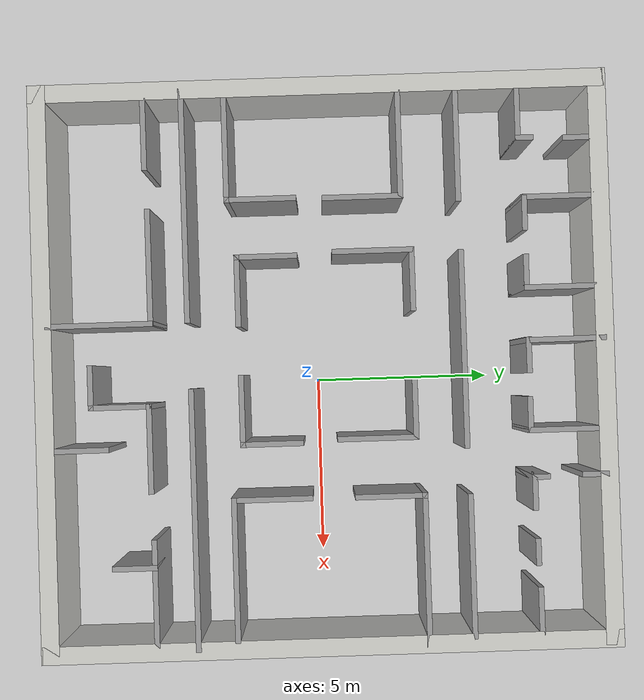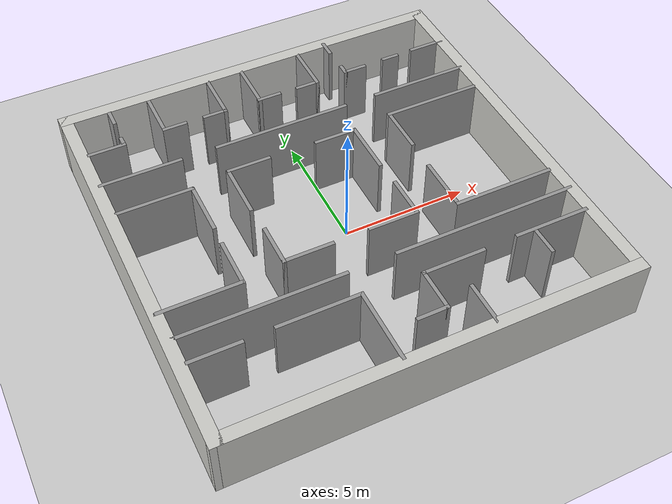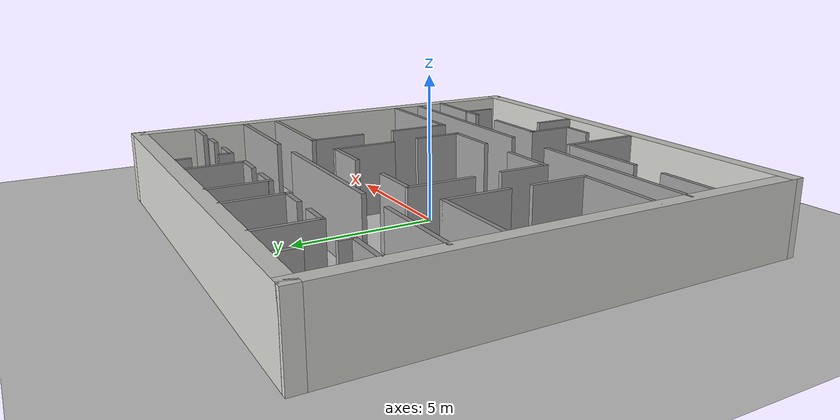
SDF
<sdf version="1.6">
 <world name="default">
  <light name="sun" type="directional">
   <pose>0 0 10 0 -0 0</pose>
   <diffuse>0.8 0.8 0.8 1</diffuse>
   <specular>0.1 0.1 0.1 1</specular>
   <attenuation>
    <range>1000</range>
    <constant>0.9</constant>
    <linear>0.01</linear>
    <quadratic>0.001</quadratic>
   </attenuation>
   <direction>-0.5 0.5 -1</direction>
  </light>
  <model name="ground_plane">
   <static>1</static>
   <link name="link">
    <collision name="collision">
     <geometry><plane><normal>0 0 1</normal><size>100 100</size></plane></geometry>
     <surface><friction><ode><mu>100</mu><mu2>50</mu2></ode></friction></surface>
    </collision>
    <visual name="visual">
     <cast_shadows>0</cast_shadows>
     <geometry><plane><normal>0 0 1</normal><size>100 100</size></plane></geometry>
     <material>
      <script><uri>file://media/materials/scripts/gazebo.material</uri><name>Gazebo/Grey</name></script>
     </material>
    </visual>
   </link>
  </model>
  <gravity>0 0 -9.8</gravity>
  <magnetic_field>6e-06 2.3e-05 -4.2e-05</magnetic_field>
  <atmosphere type="adiabatic"/>
  <physics name="default_physics" default="0" type="ode">
   <max_step_size>0.001</max_step_size>
   <real_time_factor>1</real_time_factor>
   <real_time_update_rate>1000</real_time_update_rate>
  </physics>
  <scene><ambient>0.4 0.4 0.4 1</ambient><background>0.7 0.7 0.7 1</background><shadows>1</shadows></scene>
  <spherical_coordinates>
   <surface_model>EARTH_WGS84</surface_model>
   <latitude_deg>0</latitude_deg>
   <longitude_deg>0</longitude_deg>
   <elevation>0</elevation>
   <heading_deg>0</heading_deg>
  </spherical_coordinates>
  <model name="Markert">
   <pose>-0.41 0.18511 0 0 -0 0</pose>
   <link name="Wall_0">
    <collision name="Wall_0_Collision">
     <geometry><box><size>15.9296 0.5 2.5</size></box></geometry>
     <pose>0 0 1.25 0 -0 0</pose>
    </collision>
    <visual name="Wall_0_Visual">
     <pose>0 0 1.25 0 -0 0</pose>
     <geometry><box><size>15.9296 0.5 2.5</size></box></geometry>
     <material>
      <script><uri>file://media/materials/scripts/gazebo.material</uri><name>Gazebo/CeilingTiled</name></script>
      <ambient>0.760784 0.662745 0.627451 1</ambient>
     </material>
    </visual>
    <pose>-0.035179 7.76589 0 0 -0 0</pose>
   </link>
   <link name="Wall_100">
    <collision name="Wall_100_Collision">
     <geometry><box><size>2.27326 0.15 2.5</size></box></geometry>
     <pose>0 0 1.25 0 -0 0</pose>
    </collision>
    <visual name="Wall_100_Visual">
     <pose>0 0 1.25 0 -0 0</pose>
     <geometry><box><size>2.27326 0.15 2.5</size></box></geometry>
     <material>
      <script><uri>file://media/materials/scripts/gazebo.material</uri><name>Gazebo/Grey</name></script>
      <ambient>1 1 1 1</ambient>
     </material>
    </visual>
    <pose>-3.13389 1.44793 0 0 0 -1.5708</pose>
   </link>
   <link name="Wall_102">
    <collision name="Wall_102_Collision">
     <geometry><box><size>1.75 0.15 2.5</size></box></geometry>
     <pose>0 0 1.25 0 -0 0</pose>
    </collision>
    <visual name="Wall_102_Visual">
     <pose>0 0 1.25 0 -0 0</pose>
     <geometry><box><size>1.75 0.15 2.5</size></box></geometry>
     <material>
      <script><uri>file://media/materials/scripts/gazebo.material</uri><name>Gazebo/Grey</name></script>
      <ambient>1 1 1 1</ambient>
     </material>
    </visual>
    <pose>-3.0645 -1.52879 0 0 0 -1.5708</pose>
   </link>
   <link name="Wall_103">
    <collision name="Wall_103_Collision">
     <geometry><box><size>2 0.15 2.5</size></box></geometry>
     <pose>0 0 1.25 0 -0 0</pose>
    </collision>
    <visual name="Wall_103_Visual">
     <pose>0 0 1.25 0 -0 0</pose>
     <geometry><box><size>2 0.15 2.5</size></box></geometry>
     <material>
      <script><uri>file://media/materials/scripts/gazebo.material</uri><name>Gazebo/Grey</name></script>
      <ambient>1 1 1 1</ambient>
     </material>
    </visual>
    <pose>-2.1395 -2.32879 0 0 -0 0</pose>
   </link>
   <link name="Wall_105">
    <collision name="Wall_105_Collision">
     <geometry><box><size>2 0.15 2.5</size></box></geometry>
     <pose>0 0 1.25 0 -0 0</pose>
    </collision>
    <visual name="Wall_105_Visual">
     <pose>0 0 1.25 0 -0 0</pose>
     <geometry><box><size>2 0.15 2.5</size></box></geometry>
     <material>
      <script><uri>file://media/materials/scripts/gazebo.material</uri><name>Gazebo/Grey</name></script>
      <ambient>1 1 1 1</ambient>
     </material>
    </visual>
    <pose>1.19131 -2.30167 0 0 -0 0</pose>
   </link>
   <link name="Wall_106">
    <collision name="Wall_106_Collision">
     <geometry><box><size>1.75 0.15 2.5</size></box></geometry>
     <pose>0 0 1.25 0 -0 0</pose>
    </collision>
    <visual name="Wall_106_Visual">
     <pose>0 0 1.25 0 -0 0</pose>
     <geometry><box><size>1.75 0.15 2.5</size></box></geometry>
     <material>
      <script><uri>file://media/materials/scripts/gazebo.material</uri><name>Gazebo/Grey</name></script>
      <ambient>1 1 1 1</ambient>
     </material>
    </visual>
    <pose>2.11631 -1.50167 0 0 -0 1.5708</pose>
   </link>
   <link name="Wall_108">
    <collision name="Wall_108_Collision">
     <geometry><box><size>2.25 0.15 2.5</size></box></geometry>
     <pose>0 0 1.25 0 -0 0</pose>
    </collision>
    <visual name="Wall_108_Visual">
     <pose>0 0 1.25 0 -0 0</pose>
     <geometry><box><size>2.25 0.15 2.5</size></box></geometry>
     <material>
      <script><uri>file://media/materials/scripts/gazebo.material</uri><name>Gazebo/Grey</name></script>
      <ambient>1 1 1 1</ambient>
     </material>
    </visual>
    <pose>2.04737 1.43148 0 0 -0 1.5708</pose>
   </link>
   <link name="Wall_11">
    <collision name="Wall_11_Collision">
     <geometry><box><size>1.5 0.15 2.5</size></box></geometry>
     <pose>0 0 1.25 0 -0 0</pose>
    </collision>
    <visual name="Wall_11_Visual">
     <pose>0 0 1.25 0 -0 0</pose>
     <geometry><box><size>1.5 0.15 2.5</size></box></geometry>
     <material>
      <script><uri>file://media/materials/scripts/gazebo.material</uri><name>Gazebo/Grey</name></script>
      <ambient>1 1 1 1</ambient>
     </material>
    </visual>
    <pose>-6.8057 5.55204 0 0 -0 0</pose>
   </link>
   <link name="Wall_111">
    <collision name="Wall_111_Collision">
     <geometry><box><size>1.75 0.15 2.5</size></box></geometry>
     <pose>0 0 1.25 0 -0 0</pose>
    </collision>
    <visual name="Wall_111_Visual">
     <pose>0 0 1.25 0 -0 0</pose>
     <geometry><box><size>1.75 0.15 2.5</size></box></geometry>
     <material>
      <script><uri>file://media/materials/scripts/gazebo.material</uri><name>Gazebo/Grey</name></script>
      <ambient>1 1 1 1</ambient>
     </material>
    </visual>
    <pose>-2.31076 2.50949 0 0 -0 0</pose>
   </link>
   <link name="Wall_113">
    <collision name="Wall_113_Collision">
     <geometry><box><size>1.75 0.15 2.5</size></box></geometry>
     <pose>0 0 1.25 0 -0 0</pose>
    </collision>
    <visual name="Wall_113_Visual">
     <pose>0 0 1.25 0 -0 0</pose>
     <geometry><box><size>1.75 0.15 2.5</size></box></geometry>
     <material>
      <script><uri>file://media/materials/scripts/gazebo.material</uri><name>Gazebo/Grey</name></script>
      <ambient>1 1 1 1</ambient>
     </material>
    </visual>
    <pose>1.24737 2.48148 0 0 -0 3.14159</pose>
   </link>
   <link name="Wall_115">
    <collision name="Wall_115_Collision">
     <geometry><box><size>2 0.15 2.5</size></box></geometry>
     <pose>0 0 1.25 0 -0 0</pose>
    </collision>
    <visual name="Wall_115_Visual">
     <pose>0 0 1.25 0 -0 0</pose>
     <geometry><box><size>2 0.15 2.5</size></box></geometry>
     <material>
      <script><uri>file://media/materials/scripts/gazebo.material</uri><name>Gazebo/Grey</name></script>
      <ambient>1 1 1 1</ambient>
     </material>
    </visual>
    <pose>-6.55744 -4.79978 0 0 -0 0</pose>
   </link>
   <link name="Wall_117">
    <collision name="Wall_117_Collision">
     <geometry><box><size>3.25 0.15 2.5</size></box></geometry>
     <pose>0 0 1.25 0 -0 0</pose>
    </collision>
    <visual name="Wall_117_Visual">
     <pose>0 0 1.25 0 -0 0</pose>
     <geometry><box><size>3.25 0.15 2.5</size></box></geometry>
     <material>
      <script><uri>file://media/materials/scripts/gazebo.material</uri><name>Gazebo/Grey</name></script>
      <ambient>1 1 1 1</ambient>
     </material>
    </visual>
    <pose>-2.85607 -4.75352 0 0 -0 0</pose>
   </link>
   <link name="Wall_118">
    <collision name="Wall_118_Collision">
     <geometry><box><size>3 0.15 2.5</size></box></geometry>
     <pose>0 0 1.25 0 -0 0</pose>
    </collision>
    <visual name="Wall_118_Visual">
     <pose>0 0 1.25 0 -0 0</pose>
     <geometry><box><size>3 0.15 2.5</size></box></geometry>
     <material>
      <script><uri>file://media/materials/scripts/gazebo.material</uri><name>Gazebo/Grey</name></script>
      <ambient>1 1 1 1</ambient>
     </material>
    </visual>
    <pose>-1.30607 -6.17852 0 0 0 -1.5708</pose>
   </link>
   <link name="Wall_12">
    <collision name="Wall_12_Collision">
     <geometry><box><size>0.5 0.15 2.5</size></box></geometry>
     <pose>0 0 1.25 0 -0 0</pose>
    </collision>
    <visual name="Wall_12_Visual">
     <pose>0 0 1.25 0 -0 0</pose>
     <geometry><box><size>0.5 0.15 2.5</size></box></geometry>
     <material>
      <script><uri>file://media/materials/scripts/gazebo.material</uri><name>Gazebo/Grey</name></script>
      <ambient>1 1 1 1</ambient>
     </material>
    </visual>
    <pose>-6.1307 5.72704 0 0 -0 1.5708</pose>
   </link>
   <link name="Wall_120">
    <collision name="Wall_120_Collision">
     <geometry><box><size>1.25 0.15 2.5</size></box></geometry>
     <pose>0 0 1.25 0 -0 0</pose>
    </collision>
    <visual name="Wall_120_Visual">
     <pose>0 0 1.25 0 -0 0</pose>
     <geometry><box><size>1.25 0.15 2.5</size></box></geometry>
     <material>
      <script><uri>file://media/materials/scripts/gazebo.material</uri><name>Gazebo/Grey</name></script>
      <ambient>1 1 1 1</ambient>
     </material>
    </visual>
    <pose>0.423091 -6.46518 0 0 -0 0</pose>
   </link>
   <link name="Wall_121">
    <collision name="Wall_121_Collision">
     <geometry><box><size>1.75 0.15 2.5</size></box></geometry>
     <pose>0 0 1.25 0 -0 0</pose>
    </collision>
    <visual name="Wall_121_Visual">
     <pose>0 0 1.25 0 -0 0</pose>
     <geometry><box><size>1.75 0.15 2.5</size></box></geometry>
     <material>
      <script><uri>file://media/materials/scripts/gazebo.material</uri><name>Gazebo/Grey</name></script>
      <ambient>1 1 1 1</ambient>
     </material>
    </visual>
    <pose>0.973091 -5.66518 0 0 -0 1.5708</pose>
   </link>
   <link name="Wall_122">
    <collision name="Wall_122_Collision">
     <geometry><box><size>2.5 0.15 2.5</size></box></geometry>
     <pose>0 0 1.25 0 -0 0</pose>
    </collision>
    <visual name="Wall_122_Visual">
     <pose>0 0 1.25 0 -0 0</pose>
     <geometry><box><size>2.5 0.15 2.5</size></box></geometry>
     <material>
      <script><uri>file://media/materials/scripts/gazebo.material</uri><name>Gazebo/Grey</name></script>
      <ambient>1 1 1 1</ambient>
     </material>
    </visual>
    <pose>2.14809 -4.86518 0 0 -0 0</pose>
   </link>
   <link name="Wall_124">
    <collision name="Wall_124_Collision">
     <geometry><box><size>3 0.15 2.5</size></box></geometry>
     <pose>0 0 1.25 0 -0 0</pose>
    </collision>
    <visual name="Wall_124_Visual">
     <pose>0 0 1.25 0 -0 0</pose>
     <geometry><box><size>3 0.15 2.5</size></box></geometry>
     <material>
      <script><uri>file://media/materials/scripts/gazebo.material</uri><name>Gazebo/Grey</name></script>
      <ambient>1 1 1 1</ambient>
     </material>
    </visual>
    <pose>6.15552 -4.82291 0 0 -0 0</pose>
   </link>
   <link name="Wall_126">
    <collision name="Wall_126_Collision">
     <geometry><box><size>1.25 0.15 2.5</size></box></geometry>
     <pose>0 0 1.25 0 -0 0</pose>
    </collision>
    <visual name="Wall_126_Visual">
     <pose>0 0 1.25 0 -0 0</pose>
     <geometry><box><size>1.25 0.15 2.5</size></box></geometry>
     <material>
      <script><uri>file://media/materials/scripts/gazebo.material</uri><name>Gazebo/Grey</name></script>
      <ambient>1 1 1 1</ambient>
     </material>
    </visual>
    <pose>5.42444 -5.37291 0 0 0 -1.5708</pose>
   </link>
   <link name="Wall_128">
    <collision name="Wall_128_Collision">
     <geometry><box><size>1.75 0.15 2.5</size></box></geometry>
     <pose>0 0 1.25 0 -0 0</pose>
    </collision>
    <visual name="Wall_128_Visual">
     <pose>0 0 1.25 0 -0 0</pose>
     <geometry><box><size>1.75 0.15 2.5</size></box></geometry>
     <material>
      <script><uri>file://media/materials/scripts/gazebo.material</uri><name>Gazebo/Grey</name></script>
      <ambient>1 1 1 1</ambient>
     </material>
    </visual>
    <pose>2.13989 -6.87196 0 0 0 -1.5708</pose>
   </link>
   <link name="Wall_14">
    <collision name="Wall_14_Collision">
     <geometry><box><size>0.75 0.15 2.5</size></box></geometry>
     <pose>0 0 1.25 0 -0 0</pose>
    </collision>
    <visual name="Wall_14_Visual">
     <pose>0 0 1.25 0 -0 0</pose>
     <geometry><box><size>0.75 0.15 2.5</size></box></geometry>
     <material>
      <script><uri>file://media/materials/scripts/gazebo.material</uri><name>Gazebo/Grey</name></script>
      <ambient>1 1 1 1</ambient>
     </material>
    </visual>
    <pose>-6.09287 7.16161 0 0 -0 1.5708</pose>
   </link>
   <link name="Wall_16">
    <collision name="Wall_16_Collision">
     <geometry><box><size>2 0.15 2.5</size></box></geometry>
     <pose>0 0 1.25 0 -0 0</pose>
    </collision>
    <visual name="Wall_16_Visual">
     <pose>0 0 1.25 0 -0 0</pose>
     <geometry><box><size>2 0.15 2.5</size></box></geometry>
     <material>
      <script><uri>file://media/materials/scripts/gazebo.material</uri><name>Gazebo/Grey</name></script>
      <ambient>1 1 1 1</ambient>
     </material>
    </visual>
    <pose>-4.48618 6.59332 0 0 0 -1.5708</pose>
   </link>
   <link name="Wall_17">
    <collision name="Wall_17_Collision">
     <geometry><box><size>1 0.15 2.5</size></box></geometry>
     <pose>0 0 1.25 0 -0 0</pose>
    </collision>
    <visual name="Wall_17_Visual">
     <pose>0 0 1.25 0 -0 0</pose>
     <geometry><box><size>1 0.15 2.5</size></box></geometry>
     <material>
      <script><uri>file://media/materials/scripts/gazebo.material</uri><name>Gazebo/Grey</name></script>
      <ambient>1 1 1 1</ambient>
     </material>
    </visual>
    <pose>-4.06118 5.66832 0 0 -0 0</pose>
   </link>
   <link name="Wall_19">
    <collision name="Wall_19_Collision">
     <geometry><box><size>1 0.15 2.5</size></box></geometry>
     <pose>0 0 1.25 0 -0 0</pose>
    </collision>
    <visual name="Wall_19_Visual">
     <pose>0 0 1.25 0 -0 0</pose>
     <geometry><box><size>1 0.15 2.5</size></box></geometry>
     <material>
      <script><uri>file://media/materials/scripts/gazebo.material</uri><name>Gazebo/Grey</name></script>
      <ambient>1 1 1 1</ambient>
     </material>
    </visual>
    <pose>-2.40342 5.66285 0 0 -0 0</pose>
   </link>
   <link name="Wall_20">
    <collision name="Wall_20_Collision">
     <geometry><box><size>2 0.15 2.5</size></box></geometry>
     <pose>0 0 1.25 0 -0 0</pose>
    </collision>
    <visual name="Wall_20_Visual">
     <pose>0 0 1.25 0 -0 0</pose>
     <geometry><box><size>2 0.15 2.5</size></box></geometry>
     <material>
      <script><uri>file://media/materials/scripts/gazebo.material</uri><name>Gazebo/Grey</name></script>
      <ambient>1 1 1 1</ambient>
     </material>
    </visual>
    <pose>-1.97842 6.58785 0 0 -0 1.5708</pose>
   </link>
   <link name="Wall_22">
    <collision name="Wall_22_Collision">
     <geometry><box><size>2.22024 0.15 2.5</size></box></geometry>
     <pose>0 0 1.25 0 -0 0</pose>
    </collision>
    <visual name="Wall_22_Visual">
     <pose>0 0 1.25 0 -0 0</pose>
     <geometry><box><size>2.22024 0.15 2.5</size></box></geometry>
     <material>
      <script><uri>file://media/materials/scripts/gazebo.material</uri><name>Gazebo/Grey</name></script>
      <ambient>1 1 1 1</ambient>
     </material>
    </visual>
    <pose>-0.527628 6.69645 0 0 0 -1.56667</pose>
   </link>
   <link name="Wall_23">
    <collision name="Wall_23_Collision">
     <geometry><box><size>1 0.15 2.5</size></box></geometry>
     <pose>0 0 1.25 0 -0 0</pose>
    </collision>
    <visual name="Wall_23_Visual">
     <pose>0 0 1.25 0 -0 0</pose>
     <geometry><box><size>1 0.15 2.5</size></box></geometry>
     <material>
      <script><uri>file://media/materials/scripts/gazebo.material</uri><name>Gazebo/Grey</name></script>
      <ambient>1 1 1 1</ambient>
     </material>
    </visual>
    <pose>-0.113562 5.66166 0 0 -0 0</pose>
   </link>
   <link name="Wall_25">
    <collision name="Wall_25_Collision">
     <geometry><box><size>1 0.15 2.5</size></box></geometry>
     <pose>0 0 1.25 0 -0 0</pose>
    </collision>
    <visual name="Wall_25_Visual">
     <pose>0 0 1.25 0 -0 0</pose>
     <geometry><box><size>1 0.15 2.5</size></box></geometry>
     <material>
      <script><uri>file://media/materials/scripts/gazebo.material</uri><name>Gazebo/Grey</name></script>
      <ambient>1 1 1 1</ambient>
     </material>
    </visual>
    <pose>1.53564 5.64764 0 0 -0 0</pose>
   </link>
   <link name="Wall_27">
    <collision name="Wall_27_Collision">
     <geometry><box><size>2 0.15 2.5</size></box></geometry>
     <pose>0 0 1.25 0 -0 0</pose>
    </collision>
    <visual name="Wall_27_Visual">
     <pose>0 0 1.25 0 -0 0</pose>
     <geometry><box><size>2 0.15 2.5</size></box></geometry>
     <material>
      <script><uri>file://media/materials/scripts/gazebo.material</uri><name>Gazebo/Grey</name></script>
      <ambient>1 1 1 1</ambient>
     </material>
    </visual>
    <pose>1.96064 6.57264 0 0 -0 1.5708</pose>
   </link>
   <link name="Wall_29">
    <collision name="Wall_29_Collision">
     <geometry><box><size>0.75 0.15 2.5</size></box></geometry>
     <pose>0 0 1.25 0 -0 0</pose>
    </collision>
    <visual name="Wall_29_Visual">
     <pose>0 0 1.25 0 -0 0</pose>
     <geometry><box><size>0.75 0.15 2.5</size></box></geometry>
     <material>
      <script><uri>file://media/materials/scripts/gazebo.material</uri><name>Gazebo/Grey</name></script>
      <ambient>1 1 1 1</ambient>
     </material>
    </visual>
    <pose>3.22466 7.38561 0 0 0 -1.5708</pose>
   </link>
   <link name="Wall_31">
    <collision name="Wall_31_Collision">
     <geometry><box><size>0.5 0.15 2.5</size></box></geometry>
     <pose>0 0 1.25 0 -0 0</pose>
    </collision>
    <visual name="Wall_31_Visual">
     <pose>0 0 1.25 0 -0 0</pose>
     <geometry><box><size>0.5 0.15 2.5</size></box></geometry>
     <material>
      <script><uri>file://media/materials/scripts/gazebo.material</uri><name>Gazebo/Grey</name></script>
      <ambient>1 1 1 1</ambient>
     </material>
    </visual>
    <pose>3.25508 5.88328 0 0 0 -1.5708</pose>
   </link>
   <link name="Wall_32">
    <collision name="Wall_32_Collision">
     <geometry><box><size>1 0.15 2.5</size></box></geometry>
     <pose>0 0 1.25 0 -0 0</pose>
    </collision>
    <visual name="Wall_32_Visual">
     <pose>0 0 1.25 0 -0 0</pose>
     <geometry><box><size>1 0.15 2.5</size></box></geometry>
     <material>
      <script><uri>file://media/materials/scripts/gazebo.material</uri><name>Gazebo/Grey</name></script>
      <ambient>1 1 1 1</ambient>
     </material>
    </visual>
    <pose>3.68008 5.70828 0 0 -0 0</pose>
   </link>
   <link name="Wall_34">
    <collision name="Wall_34_Collision">
     <geometry><box><size>0.75 0.15 2.5</size></box></geometry>
     <pose>0 0 1.25 0 -0 0</pose>
    </collision>
    <visual name="Wall_34_Visual">
     <pose>0 0 1.25 0 -0 0</pose>
     <geometry><box><size>0.75 0.15 2.5</size></box></geometry>
     <material>
      <script><uri>file://media/materials/scripts/gazebo.material</uri><name>Gazebo/Grey</name></script>
      <ambient>1 1 1 1</ambient>
     </material>
    </visual>
    <pose>5.31929 5.73889 0 0 -0 0</pose>
   </link>
   <link name="Wall_36">
    <collision name="Wall_36_Collision">
     <geometry><box><size>1.5 0.15 2.5</size></box></geometry>
     <pose>0 0 1.25 0 -0 0</pose>
    </collision>
    <visual name="Wall_36_Visual">
     <pose>0 0 1.25 0 -0 0</pose>
     <geometry><box><size>1.5 0.15 2.5</size></box></geometry>
     <material>
      <script><uri>file://media/materials/scripts/gazebo.material</uri><name>Gazebo/Grey</name></script>
      <ambient>1 1 1 1</ambient>
     </material>
    </visual>
    <pose>7.03266 5.76931 0 0 -0 0</pose>
   </link>
   <link name="Wall_4">
    <collision name="Wall_4_Collision">
     <geometry><box><size>16 0.5 2.5</size></box></geometry>
     <pose>0 0 1.25 0 -0 0</pose>
    </collision>
    <visual name="Wall_4_Visual">
     <pose>0 0 1.25 0 -0 0</pose>
     <geometry><box><size>16 0.5 2.5</size></box></geometry>
     <material>
      <script><uri>file://media/materials/scripts/gazebo.material</uri><name>Gazebo/CeilingTiled</name></script>
      <ambient>0.760784 0.662745 0.627451 1</ambient>
     </material>
    </visual>
    <pose>-7.75 0.01589 0 0 0 -1.5708</pose>
   </link>
   <link name="Wall_5">
    <collision name="Wall_5_Collision">
     <geometry><box><size>16.0002 0.5 2.5</size></box></geometry>
     <pose>0 0 1.25 0 -0 0</pose>
    </collision>
    <visual name="Wall_5_Visual">
     <pose>0 0 1.25 0 -0 0</pose>
     <geometry><box><size>16.0002 0.5 2.5</size></box></geometry>
     <material>
      <script><uri>file://media/materials/scripts/gazebo.material</uri><name>Gazebo/CeilingTiled</name></script>
      <ambient>0.760784 0.662745 0.627451 1</ambient>
     </material>
    </visual>
    <pose>0 -7.75072 0 0 0 -0.002143</pose>
   </link>
   <link name="Wall_6">
    <collision name="Wall_6_Collision">
     <geometry><box><size>16 0.5 2.5</size></box></geometry>
     <pose>0 0 1.25 0 -0 0</pose>
    </collision>
    <visual name="Wall_6_Visual">
     <pose>0 0 1.25 0 -0 0</pose>
     <geometry><box><size>16 0.5 2.5</size></box></geometry>
     <material>
      <script><uri>file://media/materials/scripts/gazebo.material</uri><name>Gazebo/CeilingTiled</name></script>
      <ambient>0.760784 0.662745 0.627451 1</ambient>
     </material>
    </visual>
    <pose>7.75 0.017856 0 0 -0 1.5708</pose>
   </link>
   <link name="Wall_78">
    <collision name="Wall_78_Collision">
     <geometry><box><size>3.25 0.15 2.5</size></box></geometry>
     <pose>0 0 1.25 0 -0 0</pose>
    </collision>
    <visual name="Wall_78_Visual">
     <pose>0 0 1.25 0 -0 0</pose>
     <geometry><box><size>3.25 0.15 2.5</size></box></geometry>
     <material>
      <script><uri>file://media/materials/scripts/gazebo.material</uri><name>Gazebo/Grey</name></script>
      <ambient>1 1 1 1</ambient>
     </material>
    </visual>
    <pose>-6.04859 3.85107 0 0 -0 3.14159</pose>
   </link>
   <link name="Wall_80">
    <collision name="Wall_80_Collision">
     <geometry><box><size>5.5 0.15 2.5</size></box></geometry>
     <pose>0 0 1.25 0 -0 0</pose>
    </collision>
    <visual name="Wall_80_Visual">
     <pose>0 0 1.25 0 -0 0</pose>
     <geometry><box><size>5.5 0.15 2.5</size></box></geometry>
     <material>
      <script><uri>file://media/materials/scripts/gazebo.material</uri><name>Gazebo/Grey</name></script>
      <ambient>1 1 1 1</ambient>
     </material>
    </visual>
    <pose>-0.343235 3.8742 0 0 -0 0</pose>
   </link>
   <link name="Wall_82">
    <collision name="Wall_82_Collision">
     <geometry><box><size>4 0.15 2.5</size></box></geometry>
     <pose>0 0 1.25 0 -0 0</pose>
    </collision>
    <visual name="Wall_82_Visual">
     <pose>0 0 1.25 0 -0 0</pose>
     <geometry><box><size>4 0.15 2.5</size></box></geometry>
     <material>
      <script><uri>file://media/materials/scripts/gazebo.material</uri><name>Gazebo/Grey</name></script>
      <ambient>1 1 1 1</ambient>
     </material>
    </visual>
    <pose>5.6609 3.92046 0 0 -0 0</pose>
   </link>
   <link name="Wall_84">
    <collision name="Wall_84_Collision">
     <geometry><box><size>3 0.15 2.5</size></box></geometry>
     <pose>0 0 1.25 0 -0 0</pose>
    </collision>
    <visual name="Wall_84_Visual">
     <pose>0 0 1.25 0 -0 0</pose>
     <geometry><box><size>3 0.15 2.5</size></box></geometry>
     <material>
      <script><uri>file://media/materials/scripts/gazebo.material</uri><name>Gazebo/Grey</name></script>
      <ambient>1 1 1 1</ambient>
     </material>
    </visual>
    <pose>-6.05744 2.25506 0 0 -0 0</pose>
   </link>
   <link name="Wall_85">
    <collision name="Wall_85_Collision">
     <geometry><box><size>2.25 0.15 2.5</size></box></geometry>
     <pose>0 0 1.25 0 -0 0</pose>
    </collision>
    <visual name="Wall_85_Visual">
     <pose>0 0 1.25 0 -0 0</pose>
     <geometry><box><size>2.25 0.15 2.5</size></box></geometry>
     <material>
      <script><uri>file://media/materials/scripts/gazebo.material</uri><name>Gazebo/Grey</name></script>
      <ambient>1 1 1 1</ambient>
     </material>
    </visual>
    <pose>-4.63244 1.20506 0 0 0 -1.5708</pose>
   </link>
   <link name="Wall_87">
    <collision name="Wall_87_Collision">
     <geometry><box><size>2 0.15 2.5</size></box></geometry>
     <pose>0 0 1.25 0 -0 0</pose>
    </collision>
    <visual name="Wall_87_Visual">
     <pose>0 0 1.25 0 -0 0</pose>
     <geometry><box><size>2 0.15 2.5</size></box></geometry>
     <material>
      <script><uri>file://media/materials/scripts/gazebo.material</uri><name>Gazebo/Grey</name></script>
      <ambient>1 1 1 1</ambient>
     </material>
    </visual>
    <pose>-4.66051 -1.63066 0 0 0 -1.5708</pose>
   </link>
   <link name="Wall_88">
    <collision name="Wall_88_Collision">
     <geometry><box><size>3.25 0.15 2.5</size></box></geometry>
     <pose>0 0 1.25 0 -0 0</pose>
    </collision>
    <visual name="Wall_88_Visual">
     <pose>0 0 1.25 0 -0 0</pose>
     <geometry><box><size>3.25 0.15 2.5</size></box></geometry>
     <material>
      <script><uri>file://media/materials/scripts/gazebo.material</uri><name>Gazebo/Grey</name></script>
      <ambient>1 1 1 1</ambient>
     </material>
    </visual>
    <pose>-6.21051 -2.55566 0 0 -0 3.14159</pose>
   </link>
   <link name="Wall_90">
    <collision name="Wall_90_Collision">
     <geometry><box><size>4.25 0.15 2.5</size></box></geometry>
     <pose>0 0 1.25 0 -0 0</pose>
    </collision>
    <visual name="Wall_90_Visual">
     <pose>0 0 1.25 0 -0 0</pose>
     <geometry><box><size>4.25 0.15 2.5</size></box></geometry>
     <material>
      <script><uri>file://media/materials/scripts/gazebo.material</uri><name>Gazebo/Grey</name></script>
      <ambient>1 1 1 1</ambient>
     </material>
    </visual>
    <pose>5.71063 2.67141 0 0 -0 3.14159</pose>
   </link>
   <link name="Wall_91">
    <collision name="Wall_91_Collision">
     <geometry><box><size>2 0.15 2.5</size></box></geometry>
     <pose>0 0 1.25 0 -0 0</pose>
    </collision>
    <visual name="Wall_91_Visual">
     <pose>0 0 1.25 0 -0 0</pose>
     <geometry><box><size>2 0.15 2.5</size></box></geometry>
     <material>
      <script><uri>file://media/materials/scripts/gazebo.material</uri><name>Gazebo/Grey</name></script>
      <ambient>1 1 1 1</ambient>
     </material>
    </visual>
    <pose>3.66063 1.74641 0 0 0 -1.5708</pose>
   </link>
   <link name="Wall_93">
    <collision name="Wall_93_Collision">
     <geometry><box><size>2.25 0.15 2.5</size></box></geometry>
     <pose>0 0 1.25 0 -0 0</pose>
    </collision>
    <visual name="Wall_93_Visual">
     <pose>0 0 1.25 0 -0 0</pose>
     <geometry><box><size>2.25 0.15 2.5</size></box></geometry>
     <material>
      <script><uri>file://media/materials/scripts/gazebo.material</uri><name>Gazebo/Grey</name></script>
      <ambient>1 1 1 1</ambient>
     </material>
    </visual>
    <pose>3.64338 -1.54748 0 0 0 -1.5708</pose>
   </link>
   <link name="Wall_94">
    <collision name="Wall_94_Collision">
     <geometry><box><size>4 0.15 2.5</size></box></geometry>
     <pose>0 0 1.25 0 -0 0</pose>
    </collision>
    <visual name="Wall_94_Visual">
     <pose>0 0 1.25 0 -0 0</pose>
     <geometry><box><size>4 0.15 2.5</size></box></geometry>
     <material>
      <script><uri>file://media/materials/scripts/gazebo.material</uri><name>Gazebo/Grey</name></script>
      <ambient>1 1 1 1</ambient>
     </material>
    </visual>
    <pose>5.56838 -2.59748 0 0 -0 0</pose>
   </link>
   <link name="Wall_96">
    <collision name="Wall_96_Collision">
     <geometry><box><size>6.5 0.15 2.5</size></box></geometry>
     <pose>0 0 1.25 0 -0 0</pose>
    </collision>
    <visual name="Wall_96_Visual">
     <pose>0 0 1.25 0 -0 0</pose>
     <geometry><box><size>6.5 0.15 2.5</size></box></geometry>
     <material>
      <script><uri>file://media/materials/scripts/gazebo.material</uri><name>Gazebo/Grey</name></script>
      <ambient>1 1 1 1</ambient>
     </material>
    </visual>
    <pose>-4.53875 -3.73577 0 0 -0 0</pose>
   </link>
   <link name="Wall_98">
    <collision name="Wall_98_Collision">
     <geometry><box><size>7.25 0.15 2.5</size></box></geometry>
     <pose>0 0 1.25 0 -0 0</pose>
    </collision>
    <visual name="Wall_98_Visual">
     <pose>0 0 1.25 0 -0 0</pose>
     <geometry><box><size>7.25 0.15 2.5</size></box></geometry>
     <material>
      <script><uri>file://media/materials/scripts/gazebo.material</uri><name>Gazebo/Grey</name></script>
      <ambient>1 1 1 1</ambient>
     </material>
    </visual>
    <pose>4.14996 -3.68951 0 0 -0 0</pose>
   </link>
   <static>1</static>
  </model>
 </world>
</sdf>
